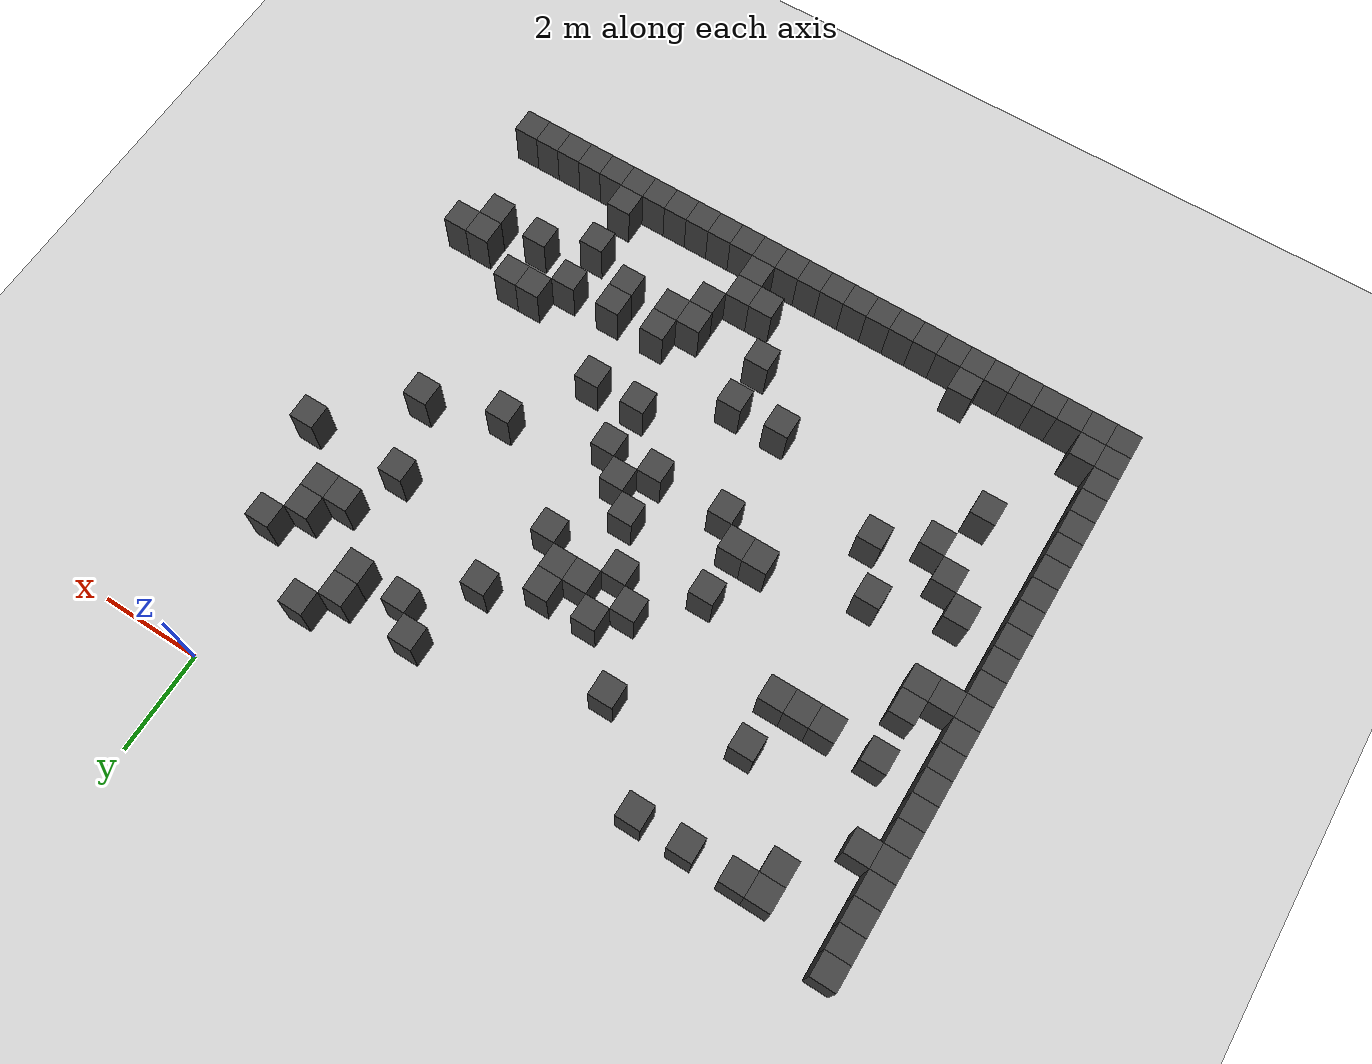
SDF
<sdf version="1.7">
 <world name="map_2522">
  <model name="ground_plane">
   <static>true</static>
   <link name="link">
    <collision name="collision">
     <geometry><plane><normal>0 0 1</normal><size>200 200</size></plane></geometry>
    </collision>
    <visual name="visual">
     <geometry><plane><normal>0 0 1</normal><size>200 200</size></plane></geometry>
     <material><ambient>0.8 0.8 0.8 1</ambient><diffuse>0.8 0.8 0.8 1</diffuse></material>
    </visual>
   </link>
  </model>
  <model name="maze_environment">
   <static>true</static>
   <link name="wall_249">
    <pose>-12.250 -1.250 0.500 0 0 0</pose>
    <collision name="col"><geometry><box><size>0.5 0.5 1.0</size></box></geometry></collision>
    <visual name="vis">
     <geometry><box><size>0.5 0.5 1.0</size></box></geometry>
     <material><ambient>0.15 0.15 0.15 1</ambient><diffuse>0.25 0.25 0.25 1</diffuse></material>
    </visual>
   </link>
   <link name="wall_256">
    <pose>-12.250 -1.750 0.500 0 0 0</pose>
    <collision name="col"><geometry><box><size>0.5 0.5 1.0</size></box></geometry></collision>
    <visual name="vis">
     <geometry><box><size>0.5 0.5 1.0</size></box></geometry>
     <material><ambient>0.15 0.15 0.15 1</ambient><diffuse>0.25 0.25 0.25 1</diffuse></material>
    </visual>
   </link>
   <link name="wall_257">
    <pose>-10.750 -1.750 0.500 0 0 0</pose>
    <collision name="col"><geometry><box><size>0.5 0.5 1.0</size></box></geometry></collision>
    <visual name="vis">
     <geometry><box><size>0.5 0.5 1.0</size></box></geometry>
     <material><ambient>0.15 0.15 0.15 1</ambient><diffuse>0.25 0.25 0.25 1</diffuse></material>
    </visual>
   </link>
   <link name="wall_258">
    <pose>-10.250 -1.750 0.500 0 0 0</pose>
    <collision name="col"><geometry><box><size>0.5 0.5 1.0</size></box></geometry></collision>
    <visual name="vis">
     <geometry><box><size>0.5 0.5 1.0</size></box></geometry>
     <material><ambient>0.15 0.15 0.15 1</ambient><diffuse>0.25 0.25 0.25 1</diffuse></material>
    </visual>
   </link>
   <link name="wall_259">
    <pose>-9.250 -1.750 0.500 0 0 0</pose>
    <collision name="col"><geometry><box><size>0.5 0.5 1.0</size></box></geometry></collision>
    <visual name="vis">
     <geometry><box><size>0.5 0.5 1.0</size></box></geometry>
     <material><ambient>0.15 0.15 0.15 1</ambient><diffuse>0.25 0.25 0.25 1</diffuse></material>
    </visual>
   </link>
   <link name="wall_260">
    <pose>-8.250 -1.750 0.500 0 0 0</pose>
    <collision name="col"><geometry><box><size>0.5 0.5 1.0</size></box></geometry></collision>
    <visual name="vis">
     <geometry><box><size>0.5 0.5 1.0</size></box></geometry>
     <material><ambient>0.15 0.15 0.15 1</ambient><diffuse>0.25 0.25 0.25 1</diffuse></material>
    </visual>
   </link>
   <link name="wall_261">
    <pose>-1.250 -1.750 0.500 0 0 0</pose>
    <collision name="col"><geometry><box><size>0.5 0.5 1.0</size></box></geometry></collision>
    <visual name="vis">
     <geometry><box><size>0.5 0.5 1.0</size></box></geometry>
     <material><ambient>0.15 0.15 0.15 1</ambient><diffuse>0.25 0.25 0.25 1</diffuse></material>
    </visual>
   </link>
   <link name="wall_266">
    <pose>-12.250 -2.250 0.500 0 0 0</pose>
    <collision name="col"><geometry><box><size>0.5 0.5 1.0</size></box></geometry></collision>
    <visual name="vis">
     <geometry><box><size>0.5 0.5 1.0</size></box></geometry>
     <material><ambient>0.15 0.15 0.15 1</ambient><diffuse>0.25 0.25 0.25 1</diffuse></material>
    </visual>
   </link>
   <link name="wall_267">
    <pose>-10.750 -2.250 0.500 0 0 0</pose>
    <collision name="col"><geometry><box><size>0.5 0.5 1.0</size></box></geometry></collision>
    <visual name="vis">
     <geometry><box><size>0.5 0.5 1.0</size></box></geometry>
     <material><ambient>0.15 0.15 0.15 1</ambient><diffuse>0.25 0.25 0.25 1</diffuse></material>
    </visual>
   </link>
   <link name="wall_268">
    <pose>-3.250 -2.250 0.500 0 0 0</pose>
    <collision name="col"><geometry><box><size>0.5 0.5 1.0</size></box></geometry></collision>
    <visual name="vis">
     <geometry><box><size>0.5 0.5 1.0</size></box></geometry>
     <material><ambient>0.15 0.15 0.15 1</ambient><diffuse>0.25 0.25 0.25 1</diffuse></material>
    </visual>
   </link>
   <link name="wall_269">
    <pose>-1.750 -2.250 0.500 0 0 0</pose>
    <collision name="col"><geometry><box><size>0.5 0.5 1.0</size></box></geometry></collision>
    <visual name="vis">
     <geometry><box><size>0.5 0.5 1.0</size></box></geometry>
     <material><ambient>0.15 0.15 0.15 1</ambient><diffuse>0.25 0.25 0.25 1</diffuse></material>
    </visual>
   </link>
   <link name="wall_273">
    <pose>-12.250 -2.750 0.500 0 0 0</pose>
    <collision name="col"><geometry><box><size>0.5 0.5 1.0</size></box></geometry></collision>
    <visual name="vis">
     <geometry><box><size>0.5 0.5 1.0</size></box></geometry>
     <material><ambient>0.15 0.15 0.15 1</ambient><diffuse>0.25 0.25 0.25 1</diffuse></material>
    </visual>
   </link>
   <link name="wall_274">
    <pose>-2.750 -2.750 0.500 0 0 0</pose>
    <collision name="col"><geometry><box><size>0.5 0.5 1.0</size></box></geometry></collision>
    <visual name="vis">
     <geometry><box><size>0.5 0.5 1.0</size></box></geometry>
     <material><ambient>0.15 0.15 0.15 1</ambient><diffuse>0.25 0.25 0.25 1</diffuse></material>
    </visual>
   </link>
   <link name="wall_275">
    <pose>-1.750 -2.750 0.500 0 0 0</pose>
    <collision name="col"><geometry><box><size>0.5 0.5 1.0</size></box></geometry></collision>
    <visual name="vis">
     <geometry><box><size>0.5 0.5 1.0</size></box></geometry>
     <material><ambient>0.15 0.15 0.15 1</ambient><diffuse>0.25 0.25 0.25 1</diffuse></material>
    </visual>
   </link>
   <link name="wall_276">
    <pose>0.250 -2.750 0.500 0 0 0</pose>
    <collision name="col"><geometry><box><size>0.5 0.5 1.0</size></box></geometry></collision>
    <visual name="vis">
     <geometry><box><size>0.5 0.5 1.0</size></box></geometry>
     <material><ambient>0.15 0.15 0.15 1</ambient><diffuse>0.25 0.25 0.25 1</diffuse></material>
    </visual>
   </link>
   <link name="wall_280">
    <pose>-12.250 -3.250 0.500 0 0 0</pose>
    <collision name="col"><geometry><box><size>0.5 0.5 1.0</size></box></geometry></collision>
    <visual name="vis">
     <geometry><box><size>0.5 0.5 1.0</size></box></geometry>
     <material><ambient>0.15 0.15 0.15 1</ambient><diffuse>0.25 0.25 0.25 1</diffuse></material>
    </visual>
   </link>
   <link name="wall_281">
    <pose>-11.750 -3.250 0.500 0 0 0</pose>
    <collision name="col"><geometry><box><size>0.5 0.5 1.0</size></box></geometry></collision>
    <visual name="vis">
     <geometry><box><size>0.5 0.5 1.0</size></box></geometry>
     <material><ambient>0.15 0.15 0.15 1</ambient><diffuse>0.25 0.25 0.25 1</diffuse></material>
    </visual>
   </link>
   <link name="wall_282">
    <pose>-6.750 -3.250 0.500 0 0 0</pose>
    <collision name="col"><geometry><box><size>0.5 0.5 1.0</size></box></geometry></collision>
    <visual name="vis">
     <geometry><box><size>0.5 0.5 1.0</size></box></geometry>
     <material><ambient>0.15 0.15 0.15 1</ambient><diffuse>0.25 0.25 0.25 1</diffuse></material>
    </visual>
   </link>
   <link name="wall_283">
    <pose>-0.250 -3.250 0.500 0 0 0</pose>
    <collision name="col"><geometry><box><size>0.5 0.5 1.0</size></box></geometry></collision>
    <visual name="vis">
     <geometry><box><size>0.5 0.5 1.0</size></box></geometry>
     <material><ambient>0.15 0.15 0.15 1</ambient><diffuse>0.25 0.25 0.25 1</diffuse></material>
    </visual>
   </link>
   <link name="wall_287">
    <pose>-12.250 -3.750 0.500 0 0 0</pose>
    <collision name="col"><geometry><box><size>0.5 0.5 1.0</size></box></geometry></collision>
    <visual name="vis">
     <geometry><box><size>0.5 0.5 1.0</size></box></geometry>
     <material><ambient>0.15 0.15 0.15 1</ambient><diffuse>0.25 0.25 0.25 1</diffuse></material>
    </visual>
   </link>
   <link name="wall_288">
    <pose>-9.250 -3.750 0.500 0 0 0</pose>
    <collision name="col"><geometry><box><size>0.5 0.5 1.0</size></box></geometry></collision>
    <visual name="vis">
     <geometry><box><size>0.5 0.5 1.0</size></box></geometry>
     <material><ambient>0.15 0.15 0.15 1</ambient><diffuse>0.25 0.25 0.25 1</diffuse></material>
    </visual>
   </link>
   <link name="wall_289">
    <pose>-3.750 -3.750 0.500 0 0 0</pose>
    <collision name="col"><geometry><box><size>0.5 0.5 1.0</size></box></geometry></collision>
    <visual name="vis">
     <geometry><box><size>0.5 0.5 1.0</size></box></geometry>
     <material><ambient>0.15 0.15 0.15 1</ambient><diffuse>0.25 0.25 0.25 1</diffuse></material>
    </visual>
   </link>
   <link name="wall_290">
    <pose>-0.750 -3.750 0.500 0 0 0</pose>
    <collision name="col"><geometry><box><size>0.5 0.5 1.0</size></box></geometry></collision>
    <visual name="vis">
     <geometry><box><size>0.5 0.5 1.0</size></box></geometry>
     <material><ambient>0.15 0.15 0.15 1</ambient><diffuse>0.25 0.25 0.25 1</diffuse></material>
    </visual>
   </link>
   <link name="wall_291">
    <pose>-0.250 -3.750 0.500 0 0 0</pose>
    <collision name="col"><geometry><box><size>0.5 0.5 1.0</size></box></geometry></collision>
    <visual name="vis">
     <geometry><box><size>0.5 0.5 1.0</size></box></geometry>
     <material><ambient>0.15 0.15 0.15 1</ambient><diffuse>0.25 0.25 0.25 1</diffuse></material>
    </visual>
   </link>
   <link name="wall_296">
    <pose>-12.250 -4.250 0.500 0 0 0</pose>
    <collision name="col"><geometry><box><size>0.5 0.5 1.0</size></box></geometry></collision>
    <visual name="vis">
     <geometry><box><size>0.5 0.5 1.0</size></box></geometry>
     <material><ambient>0.15 0.15 0.15 1</ambient><diffuse>0.25 0.25 0.25 1</diffuse></material>
    </visual>
   </link>
   <link name="wall_297">
    <pose>-5.750 -4.250 0.500 0 0 0</pose>
    <collision name="col"><geometry><box><size>0.5 0.5 1.0</size></box></geometry></collision>
    <visual name="vis">
     <geometry><box><size>0.5 0.5 1.0</size></box></geometry>
     <material><ambient>0.15 0.15 0.15 1</ambient><diffuse>0.25 0.25 0.25 1</diffuse></material>
    </visual>
   </link>
   <link name="wall_298">
    <pose>-4.750 -4.250 0.500 0 0 0</pose>
    <collision name="col"><geometry><box><size>0.5 0.5 1.0</size></box></geometry></collision>
    <visual name="vis">
     <geometry><box><size>0.5 0.5 1.0</size></box></geometry>
     <material><ambient>0.15 0.15 0.15 1</ambient><diffuse>0.25 0.25 0.25 1</diffuse></material>
    </visual>
   </link>
   <link name="wall_305">
    <pose>-12.250 -4.750 0.500 0 0 0</pose>
    <collision name="col"><geometry><box><size>0.5 0.5 1.0</size></box></geometry></collision>
    <visual name="vis">
     <geometry><box><size>0.5 0.5 1.0</size></box></geometry>
     <material><ambient>0.15 0.15 0.15 1</ambient><diffuse>0.25 0.25 0.25 1</diffuse></material>
    </visual>
   </link>
   <link name="wall_306">
    <pose>-11.250 -4.750 0.500 0 0 0</pose>
    <collision name="col"><geometry><box><size>0.5 0.5 1.0</size></box></geometry></collision>
    <visual name="vis">
     <geometry><box><size>0.5 0.5 1.0</size></box></geometry>
     <material><ambient>0.15 0.15 0.15 1</ambient><diffuse>0.25 0.25 0.25 1</diffuse></material>
    </visual>
   </link>
   <link name="wall_307">
    <pose>-10.250 -4.750 0.500 0 0 0</pose>
    <collision name="col"><geometry><box><size>0.5 0.5 1.0</size></box></geometry></collision>
    <visual name="vis">
     <geometry><box><size>0.5 0.5 1.0</size></box></geometry>
     <material><ambient>0.15 0.15 0.15 1</ambient><diffuse>0.25 0.25 0.25 1</diffuse></material>
    </visual>
   </link>
   <link name="wall_308">
    <pose>-9.750 -4.750 0.500 0 0 0</pose>
    <collision name="col"><geometry><box><size>0.5 0.5 1.0</size></box></geometry></collision>
    <visual name="vis">
     <geometry><box><size>0.5 0.5 1.0</size></box></geometry>
     <material><ambient>0.15 0.15 0.15 1</ambient><diffuse>0.25 0.25 0.25 1</diffuse></material>
    </visual>
   </link>
   <link name="wall_309">
    <pose>-9.250 -4.750 0.500 0 0 0</pose>
    <collision name="col"><geometry><box><size>0.5 0.5 1.0</size></box></geometry></collision>
    <visual name="vis">
     <geometry><box><size>0.5 0.5 1.0</size></box></geometry>
     <material><ambient>0.15 0.15 0.15 1</ambient><diffuse>0.25 0.25 0.25 1</diffuse></material>
    </visual>
   </link>
   <link name="wall_310">
    <pose>-6.250 -4.750 0.500 0 0 0</pose>
    <collision name="col"><geometry><box><size>0.5 0.5 1.0</size></box></geometry></collision>
    <visual name="vis">
     <geometry><box><size>0.5 0.5 1.0</size></box></geometry>
     <material><ambient>0.15 0.15 0.15 1</ambient><diffuse>0.25 0.25 0.25 1</diffuse></material>
    </visual>
   </link>
   <link name="wall_311">
    <pose>-5.250 -4.750 0.500 0 0 0</pose>
    <collision name="col"><geometry><box><size>0.5 0.5 1.0</size></box></geometry></collision>
    <visual name="vis">
     <geometry><box><size>0.5 0.5 1.0</size></box></geometry>
     <material><ambient>0.15 0.15 0.15 1</ambient><diffuse>0.25 0.25 0.25 1</diffuse></material>
    </visual>
   </link>
   <link name="wall_312">
    <pose>-4.750 -4.750 0.500 0 0 0</pose>
    <collision name="col"><geometry><box><size>0.5 0.5 1.0</size></box></geometry></collision>
    <visual name="vis">
     <geometry><box><size>0.5 0.5 1.0</size></box></geometry>
     <material><ambient>0.15 0.15 0.15 1</ambient><diffuse>0.25 0.25 0.25 1</diffuse></material>
    </visual>
   </link>
   <link name="wall_313">
    <pose>-1.250 -4.750 0.500 0 0 0</pose>
    <collision name="col"><geometry><box><size>0.5 0.5 1.0</size></box></geometry></collision>
    <visual name="vis">
     <geometry><box><size>0.5 0.5 1.0</size></box></geometry>
     <material><ambient>0.15 0.15 0.15 1</ambient><diffuse>0.25 0.25 0.25 1</diffuse></material>
    </visual>
   </link>
   <link name="wall_314">
    <pose>0.750 -4.750 0.500 0 0 0</pose>
    <collision name="col"><geometry><box><size>0.5 0.5 1.0</size></box></geometry></collision>
    <visual name="vis">
     <geometry><box><size>0.5 0.5 1.0</size></box></geometry>
     <material><ambient>0.15 0.15 0.15 1</ambient><diffuse>0.25 0.25 0.25 1</diffuse></material>
    </visual>
   </link>
   <link name="wall_319">
    <pose>-12.250 -5.250 0.500 0 0 0</pose>
    <collision name="col"><geometry><box><size>0.5 0.5 1.0</size></box></geometry></collision>
    <visual name="vis">
     <geometry><box><size>0.5 0.5 1.0</size></box></geometry>
     <material><ambient>0.15 0.15 0.15 1</ambient><diffuse>0.25 0.25 0.25 1</diffuse></material>
    </visual>
   </link>
   <link name="wall_320">
    <pose>-5.750 -5.250 0.500 0 0 0</pose>
    <collision name="col"><geometry><box><size>0.5 0.5 1.0</size></box></geometry></collision>
    <visual name="vis">
     <geometry><box><size>0.5 0.5 1.0</size></box></geometry>
     <material><ambient>0.15 0.15 0.15 1</ambient><diffuse>0.25 0.25 0.25 1</diffuse></material>
    </visual>
   </link>
   <link name="wall_321">
    <pose>-4.250 -5.250 0.500 0 0 0</pose>
    <collision name="col"><geometry><box><size>0.5 0.5 1.0</size></box></geometry></collision>
    <visual name="vis">
     <geometry><box><size>0.5 0.5 1.0</size></box></geometry>
     <material><ambient>0.15 0.15 0.15 1</ambient><diffuse>0.25 0.25 0.25 1</diffuse></material>
    </visual>
   </link>
   <link name="wall_326">
    <pose>-12.250 -5.750 0.500 0 0 0</pose>
    <collision name="col"><geometry><box><size>0.5 0.5 1.0</size></box></geometry></collision>
    <visual name="vis">
     <geometry><box><size>0.5 0.5 1.0</size></box></geometry>
     <material><ambient>0.15 0.15 0.15 1</ambient><diffuse>0.25 0.25 0.25 1</diffuse></material>
    </visual>
   </link>
   <link name="wall_327">
    <pose>-11.250 -5.750 0.500 0 0 0</pose>
    <collision name="col"><geometry><box><size>0.5 0.5 1.0</size></box></geometry></collision>
    <visual name="vis">
     <geometry><box><size>0.5 0.5 1.0</size></box></geometry>
     <material><ambient>0.15 0.15 0.15 1</ambient><diffuse>0.25 0.25 0.25 1</diffuse></material>
    </visual>
   </link>
   <link name="wall_328">
    <pose>-7.250 -5.750 0.500 0 0 0</pose>
    <collision name="col"><geometry><box><size>0.5 0.5 1.0</size></box></geometry></collision>
    <visual name="vis">
     <geometry><box><size>0.5 0.5 1.0</size></box></geometry>
     <material><ambient>0.15 0.15 0.15 1</ambient><diffuse>0.25 0.25 0.25 1</diffuse></material>
    </visual>
   </link>
   <link name="wall_335">
    <pose>-12.250 -6.250 0.500 0 0 0</pose>
    <collision name="col"><geometry><box><size>0.5 0.5 1.0</size></box></geometry></collision>
    <visual name="vis">
     <geometry><box><size>0.5 0.5 1.0</size></box></geometry>
     <material><ambient>0.15 0.15 0.15 1</ambient><diffuse>0.25 0.25 0.25 1</diffuse></material>
    </visual>
   </link>
   <link name="wall_336">
    <pose>-11.750 -6.250 0.500 0 0 0</pose>
    <collision name="col"><geometry><box><size>0.5 0.5 1.0</size></box></geometry></collision>
    <visual name="vis">
     <geometry><box><size>0.5 0.5 1.0</size></box></geometry>
     <material><ambient>0.15 0.15 0.15 1</ambient><diffuse>0.25 0.25 0.25 1</diffuse></material>
    </visual>
   </link>
   <link name="wall_337">
    <pose>-11.250 -6.250 0.500 0 0 0</pose>
    <collision name="col"><geometry><box><size>0.5 0.5 1.0</size></box></geometry></collision>
    <visual name="vis">
     <geometry><box><size>0.5 0.5 1.0</size></box></geometry>
     <material><ambient>0.15 0.15 0.15 1</ambient><diffuse>0.25 0.25 0.25 1</diffuse></material>
    </visual>
   </link>
   <link name="wall_338">
    <pose>-5.250 -6.250 0.500 0 0 0</pose>
    <collision name="col"><geometry><box><size>0.5 0.5 1.0</size></box></geometry></collision>
    <visual name="vis">
     <geometry><box><size>0.5 0.5 1.0</size></box></geometry>
     <material><ambient>0.15 0.15 0.15 1</ambient><diffuse>0.25 0.25 0.25 1</diffuse></material>
    </visual>
   </link>
   <link name="wall_339">
    <pose>-0.750 -6.250 0.500 0 0 0</pose>
    <collision name="col"><geometry><box><size>0.5 0.5 1.0</size></box></geometry></collision>
    <visual name="vis">
     <geometry><box><size>0.5 0.5 1.0</size></box></geometry>
     <material><ambient>0.15 0.15 0.15 1</ambient><diffuse>0.25 0.25 0.25 1</diffuse></material>
    </visual>
   </link>
   <link name="wall_346">
    <pose>-12.250 -6.750 0.500 0 0 0</pose>
    <collision name="col"><geometry><box><size>0.5 0.5 1.0</size></box></geometry></collision>
    <visual name="vis">
     <geometry><box><size>0.5 0.5 1.0</size></box></geometry>
     <material><ambient>0.15 0.15 0.15 1</ambient><diffuse>0.25 0.25 0.25 1</diffuse></material>
    </visual>
   </link>
   <link name="wall_347">
    <pose>-7.750 -6.750 0.500 0 0 0</pose>
    <collision name="col"><geometry><box><size>0.5 0.5 1.0</size></box></geometry></collision>
    <visual name="vis">
     <geometry><box><size>0.5 0.5 1.0</size></box></geometry>
     <material><ambient>0.15 0.15 0.15 1</ambient><diffuse>0.25 0.25 0.25 1</diffuse></material>
    </visual>
   </link>
   <link name="wall_348">
    <pose>-7.250 -6.750 0.500 0 0 0</pose>
    <collision name="col"><geometry><box><size>0.5 0.5 1.0</size></box></geometry></collision>
    <visual name="vis">
     <geometry><box><size>0.5 0.5 1.0</size></box></geometry>
     <material><ambient>0.15 0.15 0.15 1</ambient><diffuse>0.25 0.25 0.25 1</diffuse></material>
    </visual>
   </link>
   <link name="wall_349">
    <pose>-4.750 -6.750 0.500 0 0 0</pose>
    <collision name="col"><geometry><box><size>0.5 0.5 1.0</size></box></geometry></collision>
    <visual name="vis">
     <geometry><box><size>0.5 0.5 1.0</size></box></geometry>
     <material><ambient>0.15 0.15 0.15 1</ambient><diffuse>0.25 0.25 0.25 1</diffuse></material>
    </visual>
   </link>
   <link name="wall_350">
    <pose>-2.250 -6.750 0.500 0 0 0</pose>
    <collision name="col"><geometry><box><size>0.5 0.5 1.0</size></box></geometry></collision>
    <visual name="vis">
     <geometry><box><size>0.5 0.5 1.0</size></box></geometry>
     <material><ambient>0.15 0.15 0.15 1</ambient><diffuse>0.25 0.25 0.25 1</diffuse></material>
    </visual>
   </link>
   <link name="wall_354">
    <pose>-12.250 -7.250 0.500 0 0 0</pose>
    <collision name="col"><geometry><box><size>0.5 0.5 1.0</size></box></geometry></collision>
    <visual name="vis">
     <geometry><box><size>0.5 0.5 1.0</size></box></geometry>
     <material><ambient>0.15 0.15 0.15 1</ambient><diffuse>0.25 0.25 0.25 1</diffuse></material>
    </visual>
   </link>
   <link name="wall_355">
    <pose>-9.750 -7.250 0.500 0 0 0</pose>
    <collision name="col"><geometry><box><size>0.5 0.5 1.0</size></box></geometry></collision>
    <visual name="vis">
     <geometry><box><size>0.5 0.5 1.0</size></box></geometry>
     <material><ambient>0.15 0.15 0.15 1</ambient><diffuse>0.25 0.25 0.25 1</diffuse></material>
    </visual>
   </link>
   <link name="wall_356">
    <pose>-6.750 -7.250 0.500 0 0 0</pose>
    <collision name="col"><geometry><box><size>0.5 0.5 1.0</size></box></geometry></collision>
    <visual name="vis">
     <geometry><box><size>0.5 0.5 1.0</size></box></geometry>
     <material><ambient>0.15 0.15 0.15 1</ambient><diffuse>0.25 0.25 0.25 1</diffuse></material>
    </visual>
   </link>
   <link name="wall_357">
    <pose>-5.250 -7.250 0.500 0 0 0</pose>
    <collision name="col"><geometry><box><size>0.5 0.5 1.0</size></box></geometry></collision>
    <visual name="vis">
     <geometry><box><size>0.5 0.5 1.0</size></box></geometry>
     <material><ambient>0.15 0.15 0.15 1</ambient><diffuse>0.25 0.25 0.25 1</diffuse></material>
    </visual>
   </link>
   <link name="wall_358">
    <pose>-4.250 -7.250 0.500 0 0 0</pose>
    <collision name="col"><geometry><box><size>0.5 0.5 1.0</size></box></geometry></collision>
    <visual name="vis">
     <geometry><box><size>0.5 0.5 1.0</size></box></geometry>
     <material><ambient>0.15 0.15 0.15 1</ambient><diffuse>0.25 0.25 0.25 1</diffuse></material>
    </visual>
   </link>
   <link name="wall_363">
    <pose>-12.250 -7.750 0.500 0 0 0</pose>
    <collision name="col"><geometry><box><size>0.5 0.5 1.0</size></box></geometry></collision>
    <visual name="vis">
     <geometry><box><size>0.5 0.5 1.0</size></box></geometry>
     <material><ambient>0.15 0.15 0.15 1</ambient><diffuse>0.25 0.25 0.25 1</diffuse></material>
    </visual>
   </link>
   <link name="wall_364">
    <pose>-11.250 -7.750 0.500 0 0 0</pose>
    <collision name="col"><geometry><box><size>0.5 0.5 1.0</size></box></geometry></collision>
    <visual name="vis">
     <geometry><box><size>0.5 0.5 1.0</size></box></geometry>
     <material><ambient>0.15 0.15 0.15 1</ambient><diffuse>0.25 0.25 0.25 1</diffuse></material>
    </visual>
   </link>
   <link name="wall_372">
    <pose>-12.250 -8.250 0.500 0 0 0</pose>
    <collision name="col"><geometry><box><size>0.5 0.5 1.0</size></box></geometry></collision>
    <visual name="vis">
     <geometry><box><size>0.5 0.5 1.0</size></box></geometry>
     <material><ambient>0.15 0.15 0.15 1</ambient><diffuse>0.25 0.25 0.25 1</diffuse></material>
    </visual>
   </link>
   <link name="wall_373">
    <pose>-10.750 -8.250 0.500 0 0 0</pose>
    <collision name="col"><geometry><box><size>0.5 0.5 1.0</size></box></geometry></collision>
    <visual name="vis">
     <geometry><box><size>0.5 0.5 1.0</size></box></geometry>
     <material><ambient>0.15 0.15 0.15 1</ambient><diffuse>0.25 0.25 0.25 1</diffuse></material>
    </visual>
   </link>
   <link name="wall_374">
    <pose>-9.250 -8.250 0.500 0 0 0</pose>
    <collision name="col"><geometry><box><size>0.5 0.5 1.0</size></box></geometry></collision>
    <visual name="vis">
     <geometry><box><size>0.5 0.5 1.0</size></box></geometry>
     <material><ambient>0.15 0.15 0.15 1</ambient><diffuse>0.25 0.25 0.25 1</diffuse></material>
    </visual>
   </link>
   <link name="wall_375">
    <pose>-4.250 -8.250 0.500 0 0 0</pose>
    <collision name="col"><geometry><box><size>0.5 0.5 1.0</size></box></geometry></collision>
    <visual name="vis">
     <geometry><box><size>0.5 0.5 1.0</size></box></geometry>
     <material><ambient>0.15 0.15 0.15 1</ambient><diffuse>0.25 0.25 0.25 1</diffuse></material>
    </visual>
   </link>
   <link name="wall_376">
    <pose>-3.250 -8.250 0.500 0 0 0</pose>
    <collision name="col"><geometry><box><size>0.5 0.5 1.0</size></box></geometry></collision>
    <visual name="vis">
     <geometry><box><size>0.5 0.5 1.0</size></box></geometry>
     <material><ambient>0.15 0.15 0.15 1</ambient><diffuse>0.25 0.25 0.25 1</diffuse></material>
    </visual>
   </link>
   <link name="wall_381">
    <pose>-12.250 -8.750 0.500 0 0 0</pose>
    <collision name="col"><geometry><box><size>0.5 0.5 1.0</size></box></geometry></collision>
    <visual name="vis">
     <geometry><box><size>0.5 0.5 1.0</size></box></geometry>
     <material><ambient>0.15 0.15 0.15 1</ambient><diffuse>0.25 0.25 0.25 1</diffuse></material>
    </visual>
   </link>
   <link name="wall_382">
    <pose>-10.250 -8.750 0.500 0 0 0</pose>
    <collision name="col"><geometry><box><size>0.5 0.5 1.0</size></box></geometry></collision>
    <visual name="vis">
     <geometry><box><size>0.5 0.5 1.0</size></box></geometry>
     <material><ambient>0.15 0.15 0.15 1</ambient><diffuse>0.25 0.25 0.25 1</diffuse></material>
    </visual>
   </link>
   <link name="wall_387">
    <pose>-12.250 -9.250 0.500 0 0 0</pose>
    <collision name="col"><geometry><box><size>0.5 0.5 1.0</size></box></geometry></collision>
    <visual name="vis">
     <geometry><box><size>0.5 0.5 1.0</size></box></geometry>
     <material><ambient>0.15 0.15 0.15 1</ambient><diffuse>0.25 0.25 0.25 1</diffuse></material>
    </visual>
   </link>
   <link name="wall_388">
    <pose>-6.750 -9.250 0.500 0 0 0</pose>
    <collision name="col"><geometry><box><size>0.5 0.5 1.0</size></box></geometry></collision>
    <visual name="vis">
     <geometry><box><size>0.5 0.5 1.0</size></box></geometry>
     <material><ambient>0.15 0.15 0.15 1</ambient><diffuse>0.25 0.25 0.25 1</diffuse></material>
    </visual>
   </link>
   <link name="wall_389">
    <pose>-5.750 -9.250 0.500 0 0 0</pose>
    <collision name="col"><geometry><box><size>0.5 0.5 1.0</size></box></geometry></collision>
    <visual name="vis">
     <geometry><box><size>0.5 0.5 1.0</size></box></geometry>
     <material><ambient>0.15 0.15 0.15 1</ambient><diffuse>0.25 0.25 0.25 1</diffuse></material>
    </visual>
   </link>
   <link name="wall_390">
    <pose>-1.250 -9.250 0.500 0 0 0</pose>
    <collision name="col"><geometry><box><size>0.5 0.5 1.0</size></box></geometry></collision>
    <visual name="vis">
     <geometry><box><size>0.5 0.5 1.0</size></box></geometry>
     <material><ambient>0.15 0.15 0.15 1</ambient><diffuse>0.25 0.25 0.25 1</diffuse></material>
    </visual>
   </link>
   <link name="wall_391">
    <pose>-0.750 -9.250 0.500 0 0 0</pose>
    <collision name="col"><geometry><box><size>0.5 0.5 1.0</size></box></geometry></collision>
    <visual name="vis">
     <geometry><box><size>0.5 0.5 1.0</size></box></geometry>
     <material><ambient>0.15 0.15 0.15 1</ambient><diffuse>0.25 0.25 0.25 1</diffuse></material>
    </visual>
   </link>
   <link name="wall_399">
    <pose>-12.250 -9.750 0.500 0 0 0</pose>
    <collision name="col"><geometry><box><size>0.5 0.5 1.0</size></box></geometry></collision>
    <visual name="vis">
     <geometry><box><size>0.5 0.5 1.0</size></box></geometry>
     <material><ambient>0.15 0.15 0.15 1</ambient><diffuse>0.25 0.25 0.25 1</diffuse></material>
    </visual>
   </link>
   <link name="wall_400">
    <pose>-10.750 -9.750 0.500 0 0 0</pose>
    <collision name="col"><geometry><box><size>0.5 0.5 1.0</size></box></geometry></collision>
    <visual name="vis">
     <geometry><box><size>0.5 0.5 1.0</size></box></geometry>
     <material><ambient>0.15 0.15 0.15 1</ambient><diffuse>0.25 0.25 0.25 1</diffuse></material>
    </visual>
   </link>
   <link name="wall_401">
    <pose>-3.750 -9.750 0.500 0 0 0</pose>
    <collision name="col"><geometry><box><size>0.5 0.5 1.0</size></box></geometry></collision>
    <visual name="vis">
     <geometry><box><size>0.5 0.5 1.0</size></box></geometry>
     <material><ambient>0.15 0.15 0.15 1</ambient><diffuse>0.25 0.25 0.25 1</diffuse></material>
    </visual>
   </link>
   <link name="wall_402">
    <pose>-2.750 -9.750 0.500 0 0 0</pose>
    <collision name="col"><geometry><box><size>0.5 0.5 1.0</size></box></geometry></collision>
    <visual name="vis">
     <geometry><box><size>0.5 0.5 1.0</size></box></geometry>
     <material><ambient>0.15 0.15 0.15 1</ambient><diffuse>0.25 0.25 0.25 1</diffuse></material>
    </visual>
   </link>
   <link name="wall_403">
    <pose>-1.750 -9.750 0.500 0 0 0</pose>
    <collision name="col"><geometry><box><size>0.5 0.5 1.0</size></box></geometry></collision>
    <visual name="vis">
     <geometry><box><size>0.5 0.5 1.0</size></box></geometry>
     <material><ambient>0.15 0.15 0.15 1</ambient><diffuse>0.25 0.25 0.25 1</diffuse></material>
    </visual>
   </link>
   <link name="wall_404">
    <pose>0.250 -9.750 0.500 0 0 0</pose>
    <collision name="col"><geometry><box><size>0.5 0.5 1.0</size></box></geometry></collision>
    <visual name="vis">
     <geometry><box><size>0.5 0.5 1.0</size></box></geometry>
     <material><ambient>0.15 0.15 0.15 1</ambient><diffuse>0.25 0.25 0.25 1</diffuse></material>
    </visual>
   </link>
   <link name="wall_405">
    <pose>0.750 -9.750 0.500 0 0 0</pose>
    <collision name="col"><geometry><box><size>0.5 0.5 1.0</size></box></geometry></collision>
    <visual name="vis">
     <geometry><box><size>0.5 0.5 1.0</size></box></geometry>
     <material><ambient>0.15 0.15 0.15 1</ambient><diffuse>0.25 0.25 0.25 1</diffuse></material>
    </visual>
   </link>
   <link name="wall_411">
    <pose>-12.250 -10.250 0.500 0 0 0</pose>
    <collision name="col"><geometry><box><size>0.5 0.5 1.0</size></box></geometry></collision>
    <visual name="vis">
     <geometry><box><size>0.5 0.5 1.0</size></box></geometry>
     <material><ambient>0.15 0.15 0.15 1</ambient><diffuse>0.25 0.25 0.25 1</diffuse></material>
    </visual>
   </link>
   <link name="wall_412">
    <pose>-5.750 -10.250 0.500 0 0 0</pose>
    <collision name="col"><geometry><box><size>0.5 0.5 1.0</size></box></geometry></collision>
    <visual name="vis">
     <geometry><box><size>0.5 0.5 1.0</size></box></geometry>
     <material><ambient>0.15 0.15 0.15 1</ambient><diffuse>0.25 0.25 0.25 1</diffuse></material>
    </visual>
   </link>
   <link name="wall_413">
    <pose>-4.250 -10.250 0.500 0 0 0</pose>
    <collision name="col"><geometry><box><size>0.5 0.5 1.0</size></box></geometry></collision>
    <visual name="vis">
     <geometry><box><size>0.5 0.5 1.0</size></box></geometry>
     <material><ambient>0.15 0.15 0.15 1</ambient><diffuse>0.25 0.25 0.25 1</diffuse></material>
    </visual>
   </link>
   <link name="wall_414">
    <pose>-3.750 -10.250 0.500 0 0 0</pose>
    <collision name="col"><geometry><box><size>0.5 0.5 1.0</size></box></geometry></collision>
    <visual name="vis">
     <geometry><box><size>0.5 0.5 1.0</size></box></geometry>
     <material><ambient>0.15 0.15 0.15 1</ambient><diffuse>0.25 0.25 0.25 1</diffuse></material>
    </visual>
   </link>
   <link name="wall_415">
    <pose>-2.750 -10.250 0.500 0 0 0</pose>
    <collision name="col"><geometry><box><size>0.5 0.5 1.0</size></box></geometry></collision>
    <visual name="vis">
     <geometry><box><size>0.5 0.5 1.0</size></box></geometry>
     <material><ambient>0.15 0.15 0.15 1</ambient><diffuse>0.25 0.25 0.25 1</diffuse></material>
    </visual>
   </link>
   <link name="wall_416">
    <pose>-0.750 -10.250 0.500 0 0 0</pose>
    <collision name="col"><geometry><box><size>0.5 0.5 1.0</size></box></geometry></collision>
    <visual name="vis">
     <geometry><box><size>0.5 0.5 1.0</size></box></geometry>
     <material><ambient>0.15 0.15 0.15 1</ambient><diffuse>0.25 0.25 0.25 1</diffuse></material>
    </visual>
   </link>
   <link name="wall_417">
    <pose>0.250 -10.250 0.500 0 0 0</pose>
    <collision name="col"><geometry><box><size>0.5 0.5 1.0</size></box></geometry></collision>
    <visual name="vis">
     <geometry><box><size>0.5 0.5 1.0</size></box></geometry>
     <material><ambient>0.15 0.15 0.15 1</ambient><diffuse>0.25 0.25 0.25 1</diffuse></material>
    </visual>
   </link>
   <link name="wall_421">
    <pose>-12.250 -10.750 0.500 0 0 0</pose>
    <collision name="col"><geometry><box><size>0.5 0.5 1.0</size></box></geometry></collision>
    <visual name="vis">
     <geometry><box><size>0.5 0.5 1.0</size></box></geometry>
     <material><ambient>0.15 0.15 0.15 1</ambient><diffuse>0.25 0.25 0.25 1</diffuse></material>
    </visual>
   </link>
   <link name="wall_422">
    <pose>-4.250 -10.750 0.500 0 0 0</pose>
    <collision name="col"><geometry><box><size>0.5 0.5 1.0</size></box></geometry></collision>
    <visual name="vis">
     <geometry><box><size>0.5 0.5 1.0</size></box></geometry>
     <material><ambient>0.15 0.15 0.15 1</ambient><diffuse>0.25 0.25 0.25 1</diffuse></material>
    </visual>
   </link>
   <link name="wall_423">
    <pose>-1.750 -10.750 0.500 0 0 0</pose>
    <collision name="col"><geometry><box><size>0.5 0.5 1.0</size></box></geometry></collision>
    <visual name="vis">
     <geometry><box><size>0.5 0.5 1.0</size></box></geometry>
     <material><ambient>0.15 0.15 0.15 1</ambient><diffuse>0.25 0.25 0.25 1</diffuse></material>
    </visual>
   </link>
   <link name="wall_429">
    <pose>-12.250 -11.250 0.500 0 0 0</pose>
    <collision name="col"><geometry><box><size>0.5 0.5 1.0</size></box></geometry></collision>
    <visual name="vis">
     <geometry><box><size>0.5 0.5 1.0</size></box></geometry>
     <material><ambient>0.15 0.15 0.15 1</ambient><diffuse>0.25 0.25 0.25 1</diffuse></material>
    </visual>
   </link>
   <link name="wall_430">
    <pose>-5.250 -11.250 0.500 0 0 0</pose>
    <collision name="col"><geometry><box><size>0.5 0.5 1.0</size></box></geometry></collision>
    <visual name="vis">
     <geometry><box><size>0.5 0.5 1.0</size></box></geometry>
     <material><ambient>0.15 0.15 0.15 1</ambient><diffuse>0.25 0.25 0.25 1</diffuse></material>
    </visual>
   </link>
   <link name="wall_431">
    <pose>-4.750 -11.250 0.500 0 0 0</pose>
    <collision name="col"><geometry><box><size>0.5 0.5 1.0</size></box></geometry></collision>
    <visual name="vis">
     <geometry><box><size>0.5 0.5 1.0</size></box></geometry>
     <material><ambient>0.15 0.15 0.15 1</ambient><diffuse>0.25 0.25 0.25 1</diffuse></material>
    </visual>
   </link>
   <link name="wall_437">
    <pose>-12.250 -11.750 0.500 0 0 0</pose>
    <collision name="col"><geometry><box><size>0.5 0.5 1.0</size></box></geometry></collision>
    <visual name="vis">
     <geometry><box><size>0.5 0.5 1.0</size></box></geometry>
     <material><ambient>0.15 0.15 0.15 1</ambient><diffuse>0.25 0.25 0.25 1</diffuse></material>
    </visual>
   </link>
   <link name="wall_438">
    <pose>-11.750 -11.750 0.500 0 0 0</pose>
    <collision name="col"><geometry><box><size>0.5 0.5 1.0</size></box></geometry></collision>
    <visual name="vis">
     <geometry><box><size>0.5 0.5 1.0</size></box></geometry>
     <material><ambient>0.15 0.15 0.15 1</ambient><diffuse>0.25 0.25 0.25 1</diffuse></material>
    </visual>
   </link>
   <link name="wall_439">
    <pose>-9.250 -11.750 0.500 0 0 0</pose>
    <collision name="col"><geometry><box><size>0.5 0.5 1.0</size></box></geometry></collision>
    <visual name="vis">
     <geometry><box><size>0.5 0.5 1.0</size></box></geometry>
     <material><ambient>0.15 0.15 0.15 1</ambient><diffuse>0.25 0.25 0.25 1</diffuse></material>
    </visual>
   </link>
   <link name="wall_440">
    <pose>-4.750 -11.750 0.500 0 0 0</pose>
    <collision name="col"><geometry><box><size>0.5 0.5 1.0</size></box></geometry></collision>
    <visual name="vis">
     <geometry><box><size>0.5 0.5 1.0</size></box></geometry>
     <material><ambient>0.15 0.15 0.15 1</ambient><diffuse>0.25 0.25 0.25 1</diffuse></material>
    </visual>
   </link>
   <link name="wall_441">
    <pose>-1.750 -11.750 0.500 0 0 0</pose>
    <collision name="col"><geometry><box><size>0.5 0.5 1.0</size></box></geometry></collision>
    <visual name="vis">
     <geometry><box><size>0.5 0.5 1.0</size></box></geometry>
     <material><ambient>0.15 0.15 0.15 1</ambient><diffuse>0.25 0.25 0.25 1</diffuse></material>
    </visual>
   </link>
   <link name="wall_446">
    <pose>-12.250 -12.250 0.500 0 0 0</pose>
    <collision name="col"><geometry><box><size>0.5 0.5 1.0</size></box></geometry></collision>
    <visual name="vis">
     <geometry><box><size>0.5 0.5 1.0</size></box></geometry>
     <material><ambient>0.15 0.15 0.15 1</ambient><diffuse>0.25 0.25 0.25 1</diffuse></material>
    </visual>
   </link>
   <link name="wall_447">
    <pose>-11.750 -12.250 0.500 0 0 0</pose>
    <collision name="col"><geometry><box><size>0.5 0.5 1.0</size></box></geometry></collision>
    <visual name="vis">
     <geometry><box><size>0.5 0.5 1.0</size></box></geometry>
     <material><ambient>0.15 0.15 0.15 1</ambient><diffuse>0.25 0.25 0.25 1</diffuse></material>
    </visual>
   </link>
   <link name="wall_448">
    <pose>-11.250 -12.250 0.500 0 0 0</pose>
    <collision name="col"><geometry><box><size>0.5 0.5 1.0</size></box></geometry></collision>
    <visual name="vis">
     <geometry><box><size>0.5 0.5 1.0</size></box></geometry>
     <material><ambient>0.15 0.15 0.15 1</ambient><diffuse>0.25 0.25 0.25 1</diffuse></material>
    </visual>
   </link>
   <link name="wall_449">
    <pose>-10.750 -12.250 0.500 0 0 0</pose>
    <collision name="col"><geometry><box><size>0.5 0.5 1.0</size></box></geometry></collision>
    <visual name="vis">
     <geometry><box><size>0.5 0.5 1.0</size></box></geometry>
     <material><ambient>0.15 0.15 0.15 1</ambient><diffuse>0.25 0.25 0.25 1</diffuse></material>
    </visual>
   </link>
   <link name="wall_450">
    <pose>-10.250 -12.250 0.500 0 0 0</pose>
    <collision name="col"><geometry><box><size>0.5 0.5 1.0</size></box></geometry></collision>
    <visual name="vis">
     <geometry><box><size>0.5 0.5 1.0</size></box></geometry>
     <material><ambient>0.15 0.15 0.15 1</ambient><diffuse>0.25 0.25 0.25 1</diffuse></material>
    </visual>
   </link>
   <link name="wall_451">
    <pose>-9.750 -12.250 0.500 0 0 0</pose>
    <collision name="col"><geometry><box><size>0.5 0.5 1.0</size></box></geometry></collision>
    <visual name="vis">
     <geometry><box><size>0.5 0.5 1.0</size></box></geometry>
     <material><ambient>0.15 0.15 0.15 1</ambient><diffuse>0.25 0.25 0.25 1</diffuse></material>
    </visual>
   </link>
   <link name="wall_452">
    <pose>-9.250 -12.250 0.500 0 0 0</pose>
    <collision name="col"><geometry><box><size>0.5 0.5 1.0</size></box></geometry></collision>
    <visual name="vis">
     <geometry><box><size>0.5 0.5 1.0</size></box></geometry>
     <material><ambient>0.15 0.15 0.15 1</ambient><diffuse>0.25 0.25 0.25 1</diffuse></material>
    </visual>
   </link>
   <link name="wall_453">
    <pose>-8.750 -12.250 0.500 0 0 0</pose>
    <collision name="col"><geometry><box><size>0.5 0.5 1.0</size></box></geometry></collision>
    <visual name="vis">
     <geometry><box><size>0.5 0.5 1.0</size></box></geometry>
     <material><ambient>0.15 0.15 0.15 1</ambient><diffuse>0.25 0.25 0.25 1</diffuse></material>
    </visual>
   </link>
   <link name="wall_454">
    <pose>-8.250 -12.250 0.500 0 0 0</pose>
    <collision name="col"><geometry><box><size>0.5 0.5 1.0</size></box></geometry></collision>
    <visual name="vis">
     <geometry><box><size>0.5 0.5 1.0</size></box></geometry>
     <material><ambient>0.15 0.15 0.15 1</ambient><diffuse>0.25 0.25 0.25 1</diffuse></material>
    </visual>
   </link>
   <link name="wall_455">
    <pose>-7.750 -12.250 0.500 0 0 0</pose>
    <collision name="col"><geometry><box><size>0.5 0.5 1.0</size></box></geometry></collision>
    <visual name="vis">
     <geometry><box><size>0.5 0.5 1.0</size></box></geometry>
     <material><ambient>0.15 0.15 0.15 1</ambient><diffuse>0.25 0.25 0.25 1</diffuse></material>
    </visual>
   </link>
   <link name="wall_456">
    <pose>-7.250 -12.250 0.500 0 0 0</pose>
    <collision name="col"><geometry><box><size>0.5 0.5 1.0</size></box></geometry></collision>
    <visual name="vis">
     <geometry><box><size>0.5 0.5 1.0</size></box></geometry>
     <material><ambient>0.15 0.15 0.15 1</ambient><diffuse>0.25 0.25 0.25 1</diffuse></material>
    </visual>
   </link>
   <link name="wall_457">
    <pose>-6.750 -12.250 0.500 0 0 0</pose>
    <collision name="col"><geometry><box><size>0.5 0.5 1.0</size></box></geometry></collision>
    <visual name="vis">
     <geometry><box><size>0.5 0.5 1.0</size></box></geometry>
     <material><ambient>0.15 0.15 0.15 1</ambient><diffuse>0.25 0.25 0.25 1</diffuse></material>
    </visual>
   </link>
   <link name="wall_458">
    <pose>-6.250 -12.250 0.500 0 0 0</pose>
    <collision name="col"><geometry><box><size>0.5 0.5 1.0</size></box></geometry></collision>
    <visual name="vis">
     <geometry><box><size>0.5 0.5 1.0</size></box></geometry>
     <material><ambient>0.15 0.15 0.15 1</ambient><diffuse>0.25 0.25 0.25 1</diffuse></material>
    </visual>
   </link>
   <link name="wall_459">
    <pose>-5.750 -12.250 0.500 0 0 0</pose>
    <collision name="col"><geometry><box><size>0.5 0.5 1.0</size></box></geometry></collision>
    <visual name="vis">
     <geometry><box><size>0.5 0.5 1.0</size></box></geometry>
     <material><ambient>0.15 0.15 0.15 1</ambient><diffuse>0.25 0.25 0.25 1</diffuse></material>
    </visual>
   </link>
   <link name="wall_460">
    <pose>-5.250 -12.250 0.500 0 0 0</pose>
    <collision name="col"><geometry><box><size>0.5 0.5 1.0</size></box></geometry></collision>
    <visual name="vis">
     <geometry><box><size>0.5 0.5 1.0</size></box></geometry>
     <material><ambient>0.15 0.15 0.15 1</ambient><diffuse>0.25 0.25 0.25 1</diffuse></material>
    </visual>
   </link>
   <link name="wall_461">
    <pose>-4.750 -12.250 0.500 0 0 0</pose>
    <collision name="col"><geometry><box><size>0.5 0.5 1.0</size></box></geometry></collision>
    <visual name="vis">
     <geometry><box><size>0.5 0.5 1.0</size></box></geometry>
     <material><ambient>0.15 0.15 0.15 1</ambient><diffuse>0.25 0.25 0.25 1</diffuse></material>
    </visual>
   </link>
   <link name="wall_462">
    <pose>-4.250 -12.250 0.500 0 0 0</pose>
    <collision name="col"><geometry><box><size>0.5 0.5 1.0</size></box></geometry></collision>
    <visual name="vis">
     <geometry><box><size>0.5 0.5 1.0</size></box></geometry>
     <material><ambient>0.15 0.15 0.15 1</ambient><diffuse>0.25 0.25 0.25 1</diffuse></material>
    </visual>
   </link>
   <link name="wall_463">
    <pose>-3.750 -12.250 0.500 0 0 0</pose>
    <collision name="col"><geometry><box><size>0.5 0.5 1.0</size></box></geometry></collision>
    <visual name="vis">
     <geometry><box><size>0.5 0.5 1.0</size></box></geometry>
     <material><ambient>0.15 0.15 0.15 1</ambient><diffuse>0.25 0.25 0.25 1</diffuse></material>
    </visual>
   </link>
   <link name="wall_464">
    <pose>-3.250 -12.250 0.500 0 0 0</pose>
    <collision name="col"><geometry><box><size>0.5 0.5 1.0</size></box></geometry></collision>
    <visual name="vis">
     <geometry><box><size>0.5 0.5 1.0</size></box></geometry>
     <material><ambient>0.15 0.15 0.15 1</ambient><diffuse>0.25 0.25 0.25 1</diffuse></material>
    </visual>
   </link>
   <link name="wall_465">
    <pose>-2.750 -12.250 0.500 0 0 0</pose>
    <collision name="col"><geometry><box><size>0.5 0.5 1.0</size></box></geometry></collision>
    <visual name="vis">
     <geometry><box><size>0.5 0.5 1.0</size></box></geometry>
     <material><ambient>0.15 0.15 0.15 1</ambient><diffuse>0.25 0.25 0.25 1</diffuse></material>
    </visual>
   </link>
   <link name="wall_466">
    <pose>-2.250 -12.250 0.500 0 0 0</pose>
    <collision name="col"><geometry><box><size>0.5 0.5 1.0</size></box></geometry></collision>
    <visual name="vis">
     <geometry><box><size>0.5 0.5 1.0</size></box></geometry>
     <material><ambient>0.15 0.15 0.15 1</ambient><diffuse>0.25 0.25 0.25 1</diffuse></material>
    </visual>
   </link>
   <link name="wall_467">
    <pose>-1.750 -12.250 0.500 0 0 0</pose>
    <collision name="col"><geometry><box><size>0.5 0.5 1.0</size></box></geometry></collision>
    <visual name="vis">
     <geometry><box><size>0.5 0.5 1.0</size></box></geometry>
     <material><ambient>0.15 0.15 0.15 1</ambient><diffuse>0.25 0.25 0.25 1</diffuse></material>
    </visual>
   </link>
   <link name="wall_468">
    <pose>-1.250 -12.250 0.500 0 0 0</pose>
    <collision name="col"><geometry><box><size>0.5 0.5 1.0</size></box></geometry></collision>
    <visual name="vis">
     <geometry><box><size>0.5 0.5 1.0</size></box></geometry>
     <material><ambient>0.15 0.15 0.15 1</ambient><diffuse>0.25 0.25 0.25 1</diffuse></material>
    </visual>
   </link>
   <link name="wall_469">
    <pose>-0.750 -12.250 0.500 0 0 0</pose>
    <collision name="col"><geometry><box><size>0.5 0.5 1.0</size></box></geometry></collision>
    <visual name="vis">
     <geometry><box><size>0.5 0.5 1.0</size></box></geometry>
     <material><ambient>0.15 0.15 0.15 1</ambient><diffuse>0.25 0.25 0.25 1</diffuse></material>
    </visual>
   </link>
   <link name="wall_470">
    <pose>-0.250 -12.250 0.500 0 0 0</pose>
    <collision name="col"><geometry><box><size>0.5 0.5 1.0</size></box></geometry></collision>
    <visual name="vis">
     <geometry><box><size>0.5 0.5 1.0</size></box></geometry>
     <material><ambient>0.15 0.15 0.15 1</ambient><diffuse>0.25 0.25 0.25 1</diffuse></material>
    </visual>
   </link>
   <link name="wall_471">
    <pose>0.250 -12.250 0.500 0 0 0</pose>
    <collision name="col"><geometry><box><size>0.5 0.5 1.0</size></box></geometry></collision>
    <visual name="vis">
     <geometry><box><size>0.5 0.5 1.0</size></box></geometry>
     <material><ambient>0.15 0.15 0.15 1</ambient><diffuse>0.25 0.25 0.25 1</diffuse></material>
    </visual>
   </link>
   <link name="wall_472">
    <pose>0.750 -12.250 0.500 0 0 0</pose>
    <collision name="col"><geometry><box><size>0.5 0.5 1.0</size></box></geometry></collision>
    <visual name="vis">
     <geometry><box><size>0.5 0.5 1.0</size></box></geometry>
     <material><ambient>0.15 0.15 0.15 1</ambient><diffuse>0.25 0.25 0.25 1</diffuse></material>
    </visual>
   </link>
  </model>
 </world>
</sdf>
